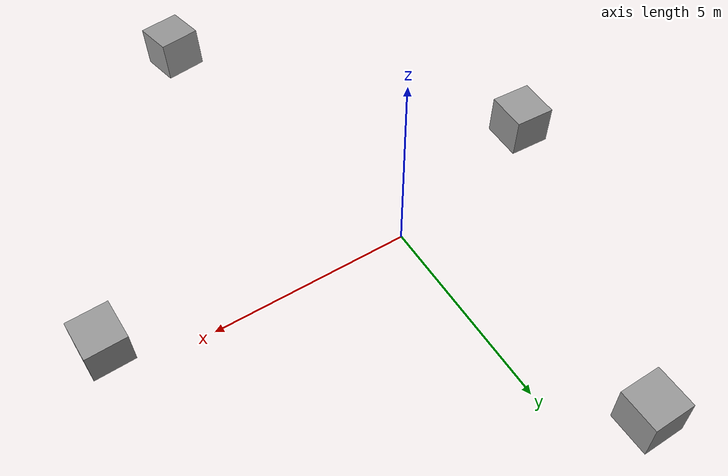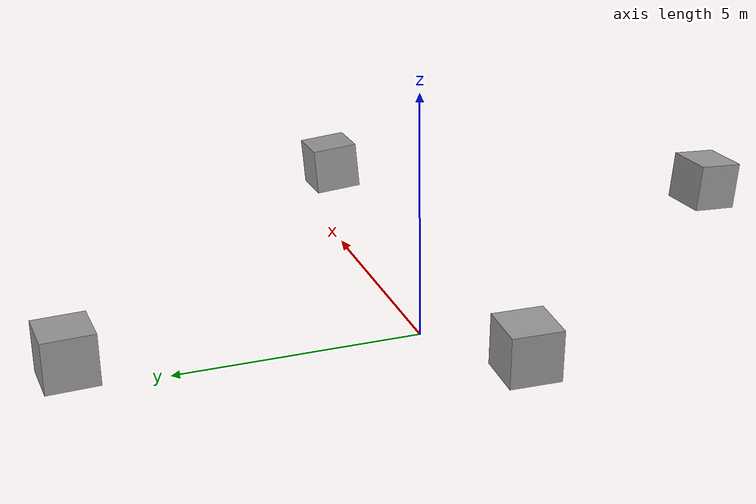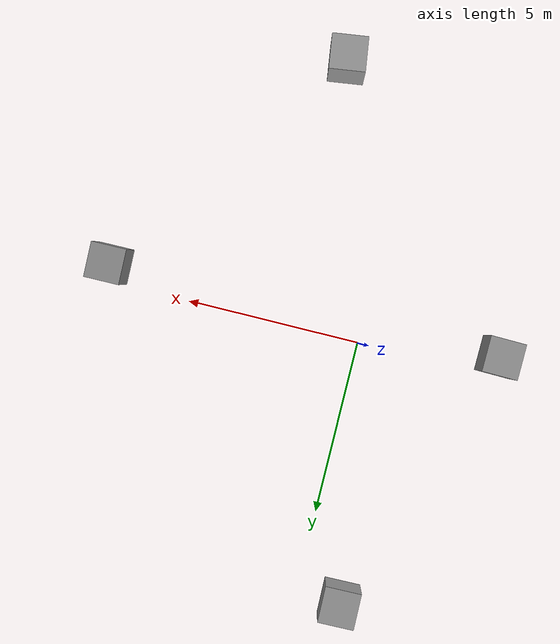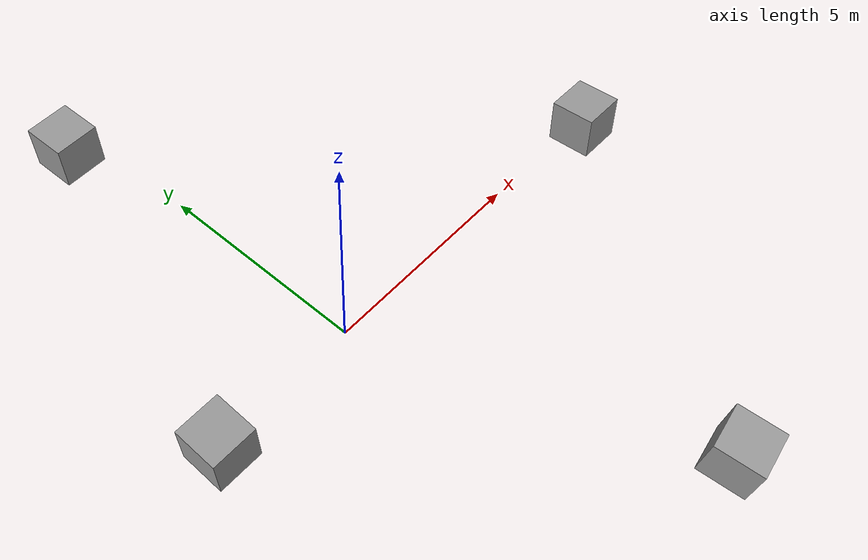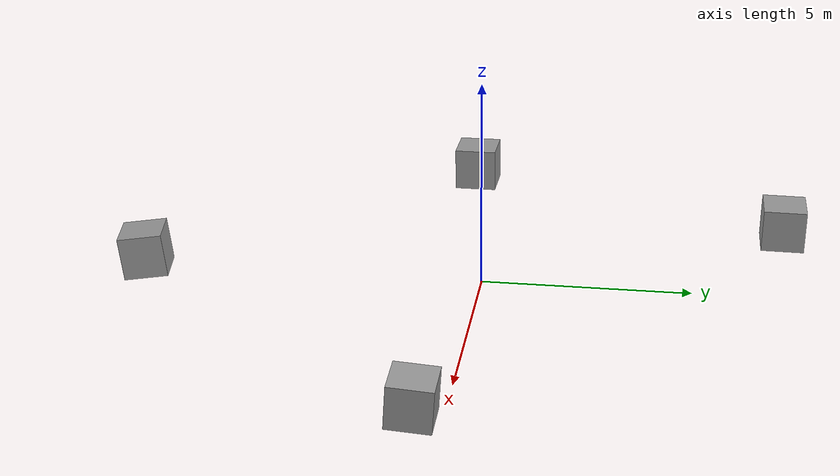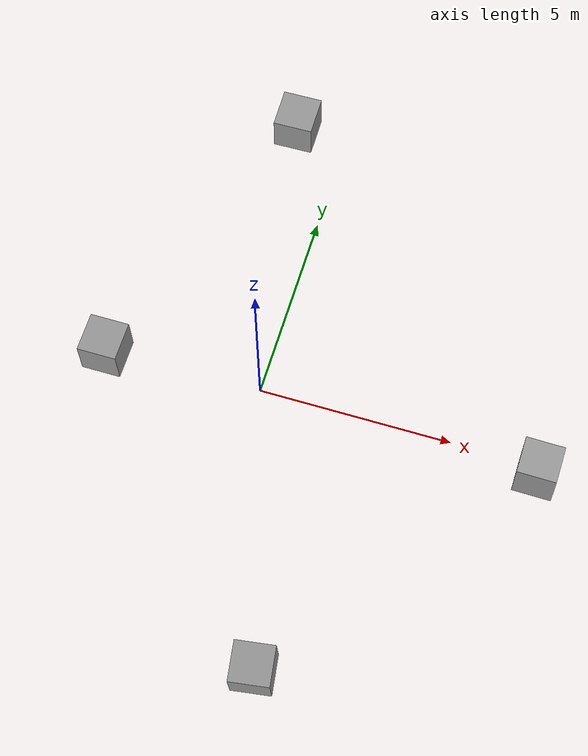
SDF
<sdf version="1.6">
 <world name="default">
  <light name="sun" type="directional">
   <pose>0 0 10 0 -0 0</pose>
   <diffuse>0.8 0.8 0.8 1</diffuse>
   <specular>0.2 0.2 0.2 1</specular>
   <attenuation>
    <range>1000</range>
    <constant>0.9</constant>
    <linear>0.01</linear>
    <quadratic>0.001</quadratic>
   </attenuation>
   <direction>0.5 0.1 -0.9</direction>
  </light>
  <scene>
   <ambient>0.8706 0.81 0.89 1</ambient>
   <background>0.2 0.2 0.6 0.1</background>
   <shadows>1</shadows>
   <sky><clouds><speed>0.3</speed><humidity>0.7</humidity></clouds></sky>
  </scene>
  <physics name="default_physics" default="0" type="ode">
   <max_step_size>0.01</max_step_size>
   <real_time_factor>1</real_time_factor>
   <real_time_update_rate>100</real_time_update_rate>
  </physics>
  <gravity>0 0 -9.8</gravity>
  <magnetic_field>6e-06 2.3e-05 -4.2e-05</magnetic_field>
  <atmosphere type="adiabatic"/>
  <spherical_coordinates>
   <surface_model>EARTH_WGS84</surface_model>
   <latitude_deg>0</latitude_deg>
   <longitude_deg>0</longitude_deg>
   <elevation>0</elevation>
   <heading_deg>0</heading_deg>
  </spherical_coordinates>
  <model name="unit_box_0">
   <pose>-3.82529 -0.563711 1.41793 0.009609 -0.039835 -0.018105</pose>
   <link name="link">
    <inertial>
     <mass>1</mass>
     <inertia>
      <ixx>0.166667</ixx>
      <ixy>0</ixy>
      <ixz>0</ixz>
      <iyy>0.166667</iyy>
      <iyz>0</iyz>
      <izz>0.166667</izz>
     </inertia>
    </inertial>
    <collision name="collision"><geometry><box><size>1 1 1</size></box></geometry></collision>
    <visual name="visual">
     <geometry><box><size>1 1 1</size></box></geometry>
     <material>
      <script><name>Gazebo/Grey</name><uri>file://media/materials/scripts/gazebo.material</uri></script>
     </material>
    </visual>
   </link>
  </model>
  <model name="unit_box_1">
   <pose>-1.15824 7.05424 1.4089 -0.016711 0.000303 0.018127</pose>
   <link name="link">
    <inertial>
     <mass>1</mass>
     <inertia>
      <ixx>0.166667</ixx>
      <ixy>0</ixy>
      <ixz>0</ixz>
      <iyy>0.166667</iyy>
      <iyz>0</iyz>
      <izz>0.166667</izz>
     </inertia>
    </inertial>
    <collision name="collision"><geometry><box><size>1 1 1</size></box></geometry></collision>
    <visual name="visual">
     <geometry><box><size>1 1 1</size></box></geometry>
     <material>
      <script><name>Gazebo/Grey</name><uri>file://media/materials/scripts/gazebo.material</uri></script>
     </material>
    </visual>
   </link>
  </model>
  <model name="unit_box_2">
   <pose>7.30445 -0.494583 0.993529 -0.070714 0.039584 0.006885</pose>
   <link name="link">
    <inertial>
     <mass>1</mass>
     <inertia>
      <ixx>0.166667</ixx>
      <ixy>0</ixy>
      <ixz>0</ixz>
      <iyy>0.166667</iyy>
      <iyz>0</iyz>
      <izz>0.166667</izz>
     </inertia>
    </inertial>
    <collision name="collision"><geometry><box><size>1 1 1</size></box></geometry></collision>
    <visual name="visual">
     <geometry><box><size>1 1 1</size></box></geometry>
     <material>
      <script><name>Gazebo/Grey</name><uri>file://media/materials/scripts/gazebo.material</uri></script>
     </material>
    </visual>
   </link>
  </model>
  <model name="unit_box_3">
   <pose>2.21453 -7.49104 1.44146 0.110794 -0.013712 0.138979</pose>
   <link name="link">
    <inertial>
     <mass>1</mass>
     <inertia>
      <ixx>0.166667</ixx>
      <ixy>0</ixy>
      <ixz>0</ixz>
      <iyy>0.166667</iyy>
      <iyz>0</iyz>
      <izz>0.166667</izz>
     </inertia>
    </inertial>
    <collision name="collision"><geometry><box><size>1 1 1</size></box></geometry></collision>
    <visual name="visual">
     <geometry><box><size>1 1 1</size></box></geometry>
     <material>
      <script><name>Gazebo/Grey</name><uri>file://media/materials/scripts/gazebo.material</uri></script>
     </material>
    </visual>
   </link>
  </model>
 </world>
</sdf>
